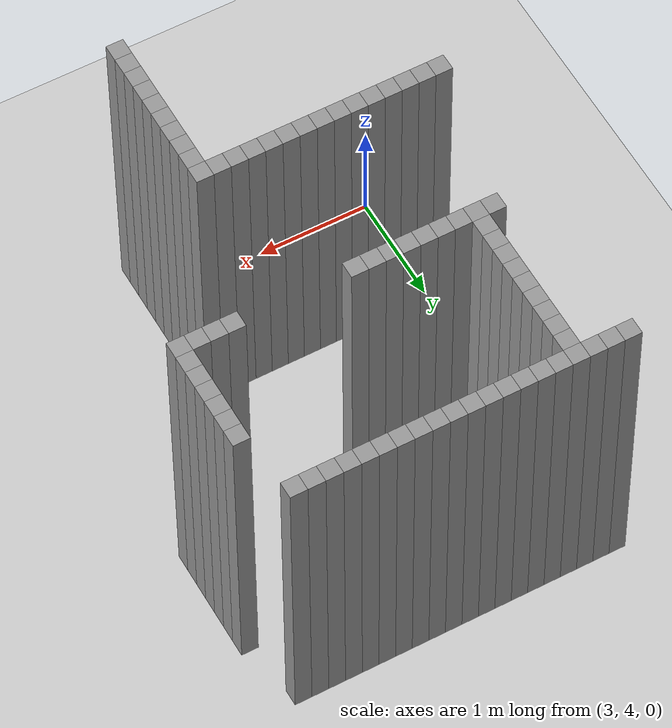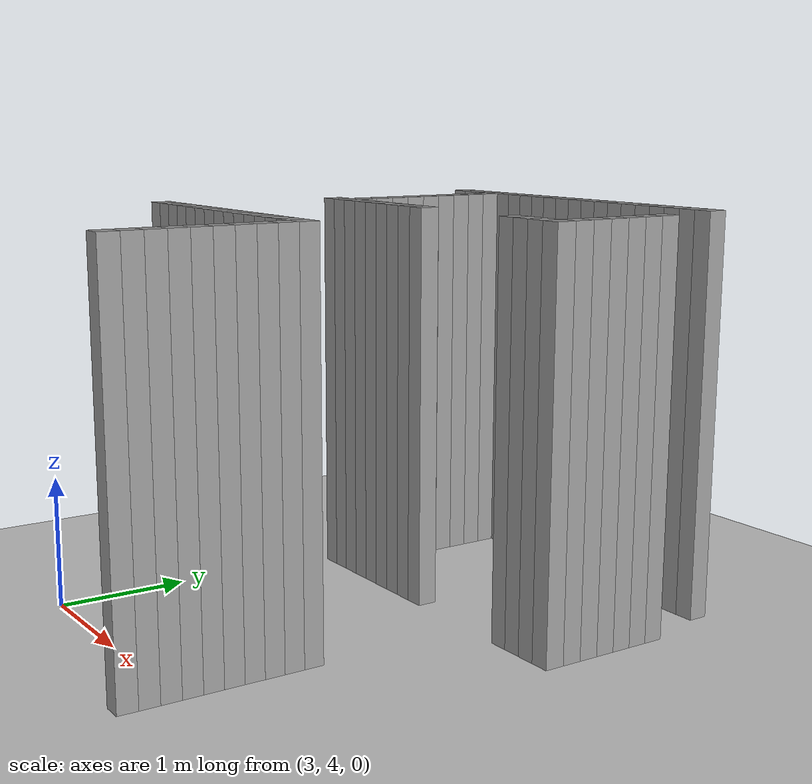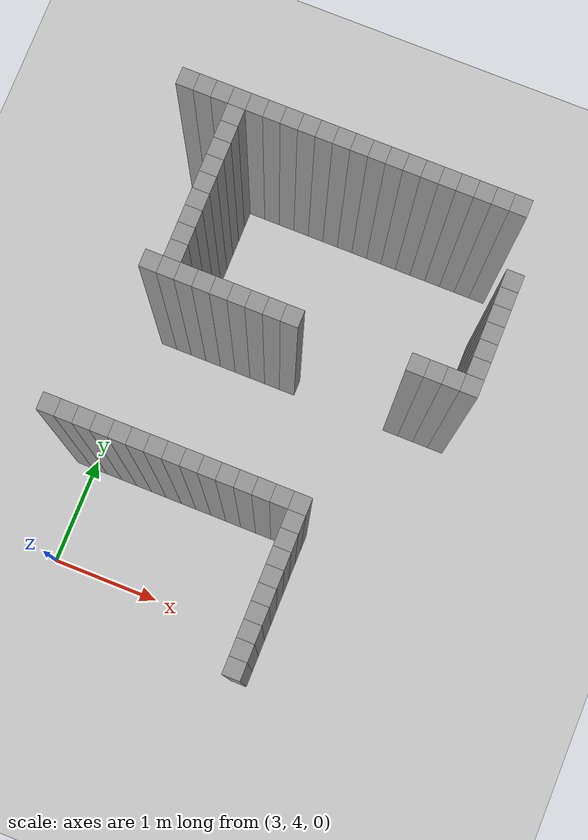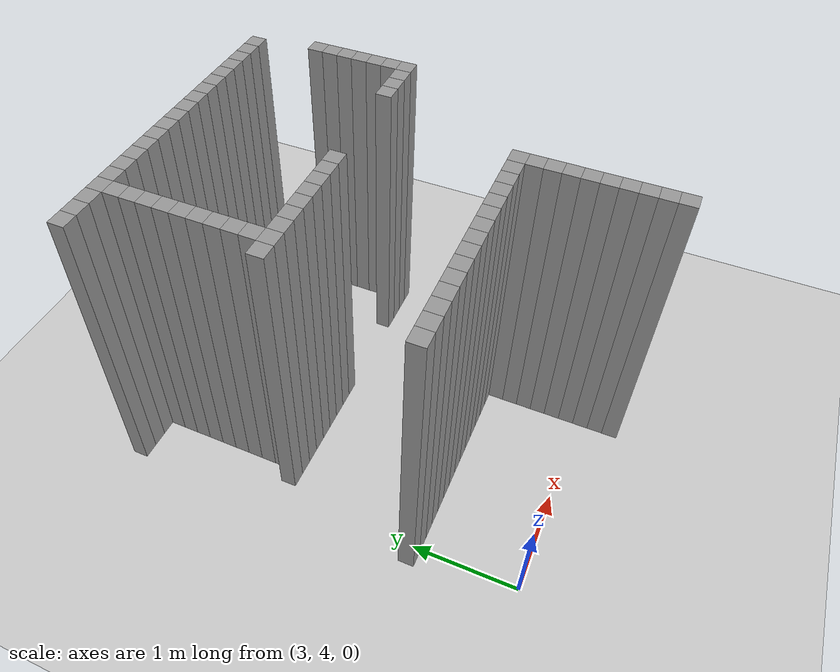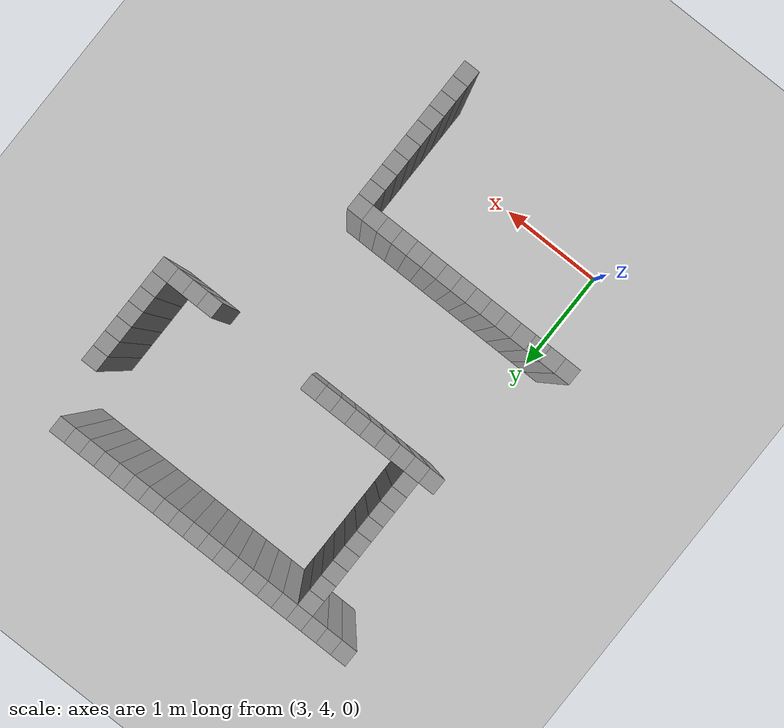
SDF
<sdf version="1.7">
 <world name="default">
  <model name="ground_plane">
   <static>1</static>
   <link name="link">
    <collision name="collision">
     <geometry><plane><normal>0 0 1</normal><size>100 100</size></plane></geometry>
     <surface>
      <contact><collide_bitmask>65535</collide_bitmask></contact>
      <friction><ode><mu>100</mu><mu2>50</mu2></ode></friction>
     </surface>
    </collision>
    <visual name="visual">
     <cast_shadows>0</cast_shadows>
     <geometry><plane><normal>0 0 1</normal><size>100 100</size></plane></geometry>
     <material>
      <script><uri>file://media/materials/scripts/gazebo.material</uri><name>Gazebo/Grey</name></script>
     </material>
    </visual>
   </link>
  </model>
  <model name="image45001">
   <pose>-1 -1 0 0 -0 0</pose>
   <link name="Wall_218">
    <collision name="Wall_218_Collision">
     <geometry><box><size>0.15 0.15 3</size></box></geometry>
     <pose>0 0 1.5 0 -0 0</pose>
    </collision>
    <visual name="Wall_218_Visual">
     <pose>0 0 1.5 0 -0 0</pose>
     <geometry><box><size>0.15 0.15 3</size></box></geometry>
     <material>
      <script><uri>file://media/materials/scripts/gazebo.material</uri><name>Gazebo/Grey</name></script>
      <ambient>1 1 1 1</ambient>
     </material>
     <meta><layer>0</layer></meta>
    </visual>
    <pose>3.9 6.0 0 0 -0 0</pose>
   </link>
   <link name="Wall_219">
    <collision name="Wall_219_Collision">
     <geometry><box><size>0.15 0.15 3</size></box></geometry>
     <pose>0 0 1.5 0 -0 0</pose>
    </collision>
    <visual name="Wall_219_Visual">
     <pose>0 0 1.5 0 -0 0</pose>
     <geometry><box><size>0.15 0.15 3</size></box></geometry>
     <material>
      <script><uri>file://media/materials/scripts/gazebo.material</uri><name>Gazebo/Grey</name></script>
      <ambient>1 1 1 1</ambient>
     </material>
     <meta><layer>0</layer></meta>
    </visual>
    <pose>3.9 8.85 0 0 -0 0</pose>
   </link>
   <link name="Wall_223">
    <collision name="Wall_223_Collision">
     <geometry><box><size>0.15 0.15 3</size></box></geometry>
     <pose>0 0 1.5 0 -0 0</pose>
    </collision>
    <visual name="Wall_223_Visual">
     <pose>0 0 1.5 0 -0 0</pose>
     <geometry><box><size>0.15 0.15 3</size></box></geometry>
     <material>
      <script><uri>file://media/materials/scripts/gazebo.material</uri><name>Gazebo/Grey</name></script>
      <ambient>1 1 1 1</ambient>
     </material>
     <meta><layer>0</layer></meta>
    </visual>
    <pose>4.05 6.0 0 0 -0 0</pose>
   </link>
   <link name="Wall_224">
    <collision name="Wall_224_Collision">
     <geometry><box><size>0.15 0.15 3</size></box></geometry>
     <pose>0 0 1.5 0 -0 0</pose>
    </collision>
    <visual name="Wall_224_Visual">
     <pose>0 0 1.5 0 -0 0</pose>
     <geometry><box><size>0.15 0.15 3</size></box></geometry>
     <material>
      <script><uri>file://media/materials/scripts/gazebo.material</uri><name>Gazebo/Grey</name></script>
      <ambient>1 1 1 1</ambient>
     </material>
     <meta><layer>0</layer></meta>
    </visual>
    <pose>4.05 8.85 0 0 -0 0</pose>
   </link>
   <link name="Wall_228">
    <collision name="Wall_228_Collision">
     <geometry><box><size>0.15 0.15 3</size></box></geometry>
     <pose>0 0 1.5 0 -0 0</pose>
    </collision>
    <visual name="Wall_228_Visual">
     <pose>0 0 1.5 0 -0 0</pose>
     <geometry><box><size>0.15 0.15 3</size></box></geometry>
     <material>
      <script><uri>file://media/materials/scripts/gazebo.material</uri><name>Gazebo/Grey</name></script>
      <ambient>1 1 1 1</ambient>
     </material>
     <meta><layer>0</layer></meta>
    </visual>
    <pose>4.2 6.0 0 0 -0 0</pose>
   </link>
   <link name="Wall_229">
    <collision name="Wall_229_Collision">
     <geometry><box><size>0.15 0.15 3</size></box></geometry>
     <pose>0 0 1.5 0 -0 0</pose>
    </collision>
    <visual name="Wall_229_Visual">
     <pose>0 0 1.5 0 -0 0</pose>
     <geometry><box><size>0.15 0.15 3</size></box></geometry>
     <material>
      <script><uri>file://media/materials/scripts/gazebo.material</uri><name>Gazebo/Grey</name></script>
      <ambient>1 1 1 1</ambient>
     </material>
     <meta><layer>0</layer></meta>
    </visual>
    <pose>4.2 7.35 0 0 -0 0</pose>
   </link>
   <link name="Wall_230">
    <collision name="Wall_230_Collision">
     <geometry><box><size>0.15 0.15 3</size></box></geometry>
     <pose>0 0 1.5 0 -0 0</pose>
    </collision>
    <visual name="Wall_230_Visual">
     <pose>0 0 1.5 0 -0 0</pose>
     <geometry><box><size>0.15 0.15 3</size></box></geometry>
     <material>
      <script><uri>file://media/materials/scripts/gazebo.material</uri><name>Gazebo/Grey</name></script>
      <ambient>1 1 1 1</ambient>
     </material>
     <meta><layer>0</layer></meta>
    </visual>
    <pose>4.2 8.85 0 0 -0 0</pose>
   </link>
   <link name="Wall_234">
    <collision name="Wall_234_Collision">
     <geometry><box><size>0.15 0.15 3</size></box></geometry>
     <pose>0 0 1.5 0 -0 0</pose>
    </collision>
    <visual name="Wall_234_Visual">
     <pose>0 0 1.5 0 -0 0</pose>
     <geometry><box><size>0.15 0.15 3</size></box></geometry>
     <material>
      <script><uri>file://media/materials/scripts/gazebo.material</uri><name>Gazebo/Grey</name></script>
      <ambient>1 1 1 1</ambient>
     </material>
     <meta><layer>0</layer></meta>
    </visual>
    <pose>4.35 6.0 0 0 -0 0</pose>
   </link>
   <link name="Wall_235">
    <collision name="Wall_235_Collision">
     <geometry><box><size>0.15 0.15 3</size></box></geometry>
     <pose>0 0 1.5 0 -0 0</pose>
    </collision>
    <visual name="Wall_235_Visual">
     <pose>0 0 1.5 0 -0 0</pose>
     <geometry><box><size>0.15 0.15 3</size></box></geometry>
     <material>
      <script><uri>file://media/materials/scripts/gazebo.material</uri><name>Gazebo/Grey</name></script>
      <ambient>1 1 1 1</ambient>
     </material>
     <meta><layer>0</layer></meta>
    </visual>
    <pose>4.35 7.35 0 0 -0 0</pose>
   </link>
   <link name="Wall_236">
    <collision name="Wall_236_Collision">
     <geometry><box><size>0.15 0.15 3</size></box></geometry>
     <pose>0 0 1.5 0 -0 0</pose>
    </collision>
    <visual name="Wall_236_Visual">
     <pose>0 0 1.5 0 -0 0</pose>
     <geometry><box><size>0.15 0.15 3</size></box></geometry>
     <material>
      <script><uri>file://media/materials/scripts/gazebo.material</uri><name>Gazebo/Grey</name></script>
      <ambient>1 1 1 1</ambient>
     </material>
     <meta><layer>0</layer></meta>
    </visual>
    <pose>4.35 7.5 0 0 -0 0</pose>
   </link>
   <link name="Wall_237">
    <collision name="Wall_237_Collision">
     <geometry><box><size>0.15 0.15 3</size></box></geometry>
     <pose>0 0 1.5 0 -0 0</pose>
    </collision>
    <visual name="Wall_237_Visual">
     <pose>0 0 1.5 0 -0 0</pose>
     <geometry><box><size>0.15 0.15 3</size></box></geometry>
     <material>
      <script><uri>file://media/materials/scripts/gazebo.material</uri><name>Gazebo/Grey</name></script>
      <ambient>1 1 1 1</ambient>
     </material>
     <meta><layer>0</layer></meta>
    </visual>
    <pose>4.35 7.6499999999999995 0 0 -0 0</pose>
   </link>
   <link name="Wall_238">
    <collision name="Wall_238_Collision">
     <geometry><box><size>0.15 0.15 3</size></box></geometry>
     <pose>0 0 1.5 0 -0 0</pose>
    </collision>
    <visual name="Wall_238_Visual">
     <pose>0 0 1.5 0 -0 0</pose>
     <geometry><box><size>0.15 0.15 3</size></box></geometry>
     <material>
      <script><uri>file://media/materials/scripts/gazebo.material</uri><name>Gazebo/Grey</name></script>
      <ambient>1 1 1 1</ambient>
     </material>
     <meta><layer>0</layer></meta>
    </visual>
    <pose>4.35 7.8 0 0 -0 0</pose>
   </link>
   <link name="Wall_239">
    <collision name="Wall_239_Collision">
     <geometry><box><size>0.15 0.15 3</size></box></geometry>
     <pose>0 0 1.5 0 -0 0</pose>
    </collision>
    <visual name="Wall_239_Visual">
     <pose>0 0 1.5 0 -0 0</pose>
     <geometry><box><size>0.15 0.15 3</size></box></geometry>
     <material>
      <script><uri>file://media/materials/scripts/gazebo.material</uri><name>Gazebo/Grey</name></script>
      <ambient>1 1 1 1</ambient>
     </material>
     <meta><layer>0</layer></meta>
    </visual>
    <pose>4.35 7.949999999999999 0 0 -0 0</pose>
   </link>
   <link name="Wall_240">
    <collision name="Wall_240_Collision">
     <geometry><box><size>0.15 0.15 3</size></box></geometry>
     <pose>0 0 1.5 0 -0 0</pose>
    </collision>
    <visual name="Wall_240_Visual">
     <pose>0 0 1.5 0 -0 0</pose>
     <geometry><box><size>0.15 0.15 3</size></box></geometry>
     <material>
      <script><uri>file://media/materials/scripts/gazebo.material</uri><name>Gazebo/Grey</name></script>
      <ambient>1 1 1 1</ambient>
     </material>
     <meta><layer>0</layer></meta>
    </visual>
    <pose>4.35 8.1 0 0 -0 0</pose>
   </link>
   <link name="Wall_241">
    <collision name="Wall_241_Collision">
     <geometry><box><size>0.15 0.15 3</size></box></geometry>
     <pose>0 0 1.5 0 -0 0</pose>
    </collision>
    <visual name="Wall_241_Visual">
     <pose>0 0 1.5 0 -0 0</pose>
     <geometry><box><size>0.15 0.15 3</size></box></geometry>
     <material>
      <script><uri>file://media/materials/scripts/gazebo.material</uri><name>Gazebo/Grey</name></script>
      <ambient>1 1 1 1</ambient>
     </material>
     <meta><layer>0</layer></meta>
    </visual>
    <pose>4.35 8.25 0 0 -0 0</pose>
   </link>
   <link name="Wall_242">
    <collision name="Wall_242_Collision">
     <geometry><box><size>0.15 0.15 3</size></box></geometry>
     <pose>0 0 1.5 0 -0 0</pose>
    </collision>
    <visual name="Wall_242_Visual">
     <pose>0 0 1.5 0 -0 0</pose>
     <geometry><box><size>0.15 0.15 3</size></box></geometry>
     <material>
      <script><uri>file://media/materials/scripts/gazebo.material</uri><name>Gazebo/Grey</name></script>
      <ambient>1 1 1 1</ambient>
     </material>
     <meta><layer>0</layer></meta>
    </visual>
    <pose>4.35 8.4 0 0 -0 0</pose>
   </link>
   <link name="Wall_243">
    <collision name="Wall_243_Collision">
     <geometry><box><size>0.15 0.15 3</size></box></geometry>
     <pose>0 0 1.5 0 -0 0</pose>
    </collision>
    <visual name="Wall_243_Visual">
     <pose>0 0 1.5 0 -0 0</pose>
     <geometry><box><size>0.15 0.15 3</size></box></geometry>
     <material>
      <script><uri>file://media/materials/scripts/gazebo.material</uri><name>Gazebo/Grey</name></script>
      <ambient>1 1 1 1</ambient>
     </material>
     <meta><layer>0</layer></meta>
    </visual>
    <pose>4.35 8.549999999999999 0 0 -0 0</pose>
   </link>
   <link name="Wall_244">
    <collision name="Wall_244_Collision">
     <geometry><box><size>0.15 0.15 3</size></box></geometry>
     <pose>0 0 1.5 0 -0 0</pose>
    </collision>
    <visual name="Wall_244_Visual">
     <pose>0 0 1.5 0 -0 0</pose>
     <geometry><box><size>0.15 0.15 3</size></box></geometry>
     <material>
      <script><uri>file://media/materials/scripts/gazebo.material</uri><name>Gazebo/Grey</name></script>
      <ambient>1 1 1 1</ambient>
     </material>
     <meta><layer>0</layer></meta>
    </visual>
    <pose>4.35 8.7 0 0 -0 0</pose>
   </link>
   <link name="Wall_245">
    <collision name="Wall_245_Collision">
     <geometry><box><size>0.15 0.15 3</size></box></geometry>
     <pose>0 0 1.5 0 -0 0</pose>
    </collision>
    <visual name="Wall_245_Visual">
     <pose>0 0 1.5 0 -0 0</pose>
     <geometry><box><size>0.15 0.15 3</size></box></geometry>
     <material>
      <script><uri>file://media/materials/scripts/gazebo.material</uri><name>Gazebo/Grey</name></script>
      <ambient>1 1 1 1</ambient>
     </material>
     <meta><layer>0</layer></meta>
    </visual>
    <pose>4.35 8.85 0 0 -0 0</pose>
   </link>
   <link name="Wall_249">
    <collision name="Wall_249_Collision">
     <geometry><box><size>0.15 0.15 3</size></box></geometry>
     <pose>0 0 1.5 0 -0 0</pose>
    </collision>
    <visual name="Wall_249_Visual">
     <pose>0 0 1.5 0 -0 0</pose>
     <geometry><box><size>0.15 0.15 3</size></box></geometry>
     <material>
      <script><uri>file://media/materials/scripts/gazebo.material</uri><name>Gazebo/Grey</name></script>
      <ambient>1 1 1 1</ambient>
     </material>
     <meta><layer>0</layer></meta>
    </visual>
    <pose>4.5 6.0 0 0 -0 0</pose>
   </link>
   <link name="Wall_250">
    <collision name="Wall_250_Collision">
     <geometry><box><size>0.15 0.15 3</size></box></geometry>
     <pose>0 0 1.5 0 -0 0</pose>
    </collision>
    <visual name="Wall_250_Visual">
     <pose>0 0 1.5 0 -0 0</pose>
     <geometry><box><size>0.15 0.15 3</size></box></geometry>
     <material>
      <script><uri>file://media/materials/scripts/gazebo.material</uri><name>Gazebo/Grey</name></script>
      <ambient>1 1 1 1</ambient>
     </material>
     <meta><layer>0</layer></meta>
    </visual>
    <pose>4.5 7.35 0 0 -0 0</pose>
   </link>
   <link name="Wall_251">
    <collision name="Wall_251_Collision">
     <geometry><box><size>0.15 0.15 3</size></box></geometry>
     <pose>0 0 1.5 0 -0 0</pose>
    </collision>
    <visual name="Wall_251_Visual">
     <pose>0 0 1.5 0 -0 0</pose>
     <geometry><box><size>0.15 0.15 3</size></box></geometry>
     <material>
      <script><uri>file://media/materials/scripts/gazebo.material</uri><name>Gazebo/Grey</name></script>
      <ambient>1 1 1 1</ambient>
     </material>
     <meta><layer>0</layer></meta>
    </visual>
    <pose>4.5 8.85 0 0 -0 0</pose>
   </link>
   <link name="Wall_268">
    <collision name="Wall_268_Collision">
     <geometry><box><size>0.15 0.15 3</size></box></geometry>
     <pose>0 0 1.5 0 -0 0</pose>
    </collision>
    <visual name="Wall_268_Visual">
     <pose>0 0 1.5 0 -0 0</pose>
     <geometry><box><size>0.15 0.15 3</size></box></geometry>
     <material>
      <script><uri>file://media/materials/scripts/gazebo.material</uri><name>Gazebo/Grey</name></script>
      <ambient>1 1 1 1</ambient>
     </material>
     <meta><layer>0</layer></meta>
    </visual>
    <pose>4.6499999999999995 6.0 0 0 -0 0</pose>
   </link>
   <link name="Wall_269">
    <collision name="Wall_269_Collision">
     <geometry><box><size>0.15 0.15 3</size></box></geometry>
     <pose>0 0 1.5 0 -0 0</pose>
    </collision>
    <visual name="Wall_269_Visual">
     <pose>0 0 1.5 0 -0 0</pose>
     <geometry><box><size>0.15 0.15 3</size></box></geometry>
     <material>
      <script><uri>file://media/materials/scripts/gazebo.material</uri><name>Gazebo/Grey</name></script>
      <ambient>1 1 1 1</ambient>
     </material>
     <meta><layer>0</layer></meta>
    </visual>
    <pose>4.6499999999999995 7.35 0 0 -0 0</pose>
   </link>
   <link name="Wall_270">
    <collision name="Wall_270_Collision">
     <geometry><box><size>0.15 0.15 3</size></box></geometry>
     <pose>0 0 1.5 0 -0 0</pose>
    </collision>
    <visual name="Wall_270_Visual">
     <pose>0 0 1.5 0 -0 0</pose>
     <geometry><box><size>0.15 0.15 3</size></box></geometry>
     <material>
      <script><uri>file://media/materials/scripts/gazebo.material</uri><name>Gazebo/Grey</name></script>
      <ambient>1 1 1 1</ambient>
     </material>
     <meta><layer>0</layer></meta>
    </visual>
    <pose>4.6499999999999995 8.85 0 0 -0 0</pose>
   </link>
   <link name="Wall_272">
    <collision name="Wall_272_Collision">
     <geometry><box><size>0.15 0.15 3</size></box></geometry>
     <pose>0 0 1.5 0 -0 0</pose>
    </collision>
    <visual name="Wall_272_Visual">
     <pose>0 0 1.5 0 -0 0</pose>
     <geometry><box><size>0.15 0.15 3</size></box></geometry>
     <material>
      <script><uri>file://media/materials/scripts/gazebo.material</uri><name>Gazebo/Grey</name></script>
      <ambient>1 1 1 1</ambient>
     </material>
     <meta><layer>0</layer></meta>
    </visual>
    <pose>4.8 6.0 0 0 -0 0</pose>
   </link>
   <link name="Wall_273">
    <collision name="Wall_273_Collision">
     <geometry><box><size>0.15 0.15 3</size></box></geometry>
     <pose>0 0 1.5 0 -0 0</pose>
    </collision>
    <visual name="Wall_273_Visual">
     <pose>0 0 1.5 0 -0 0</pose>
     <geometry><box><size>0.15 0.15 3</size></box></geometry>
     <material>
      <script><uri>file://media/materials/scripts/gazebo.material</uri><name>Gazebo/Grey</name></script>
      <ambient>1 1 1 1</ambient>
     </material>
     <meta><layer>0</layer></meta>
    </visual>
    <pose>4.8 7.35 0 0 -0 0</pose>
   </link>
   <link name="Wall_274">
    <collision name="Wall_274_Collision">
     <geometry><box><size>0.15 0.15 3</size></box></geometry>
     <pose>0 0 1.5 0 -0 0</pose>
    </collision>
    <visual name="Wall_274_Visual">
     <pose>0 0 1.5 0 -0 0</pose>
     <geometry><box><size>0.15 0.15 3</size></box></geometry>
     <material>
      <script><uri>file://media/materials/scripts/gazebo.material</uri><name>Gazebo/Grey</name></script>
      <ambient>1 1 1 1</ambient>
     </material>
     <meta><layer>0</layer></meta>
    </visual>
    <pose>4.8 8.85 0 0 -0 0</pose>
   </link>
   <link name="Wall_276">
    <collision name="Wall_276_Collision">
     <geometry><box><size>0.15 0.15 3</size></box></geometry>
     <pose>0 0 1.5 0 -0 0</pose>
    </collision>
    <visual name="Wall_276_Visual">
     <pose>0 0 1.5 0 -0 0</pose>
     <geometry><box><size>0.15 0.15 3</size></box></geometry>
     <material>
      <script><uri>file://media/materials/scripts/gazebo.material</uri><name>Gazebo/Grey</name></script>
      <ambient>1 1 1 1</ambient>
     </material>
     <meta><layer>0</layer></meta>
    </visual>
    <pose>4.95 6.0 0 0 -0 0</pose>
   </link>
   <link name="Wall_277">
    <collision name="Wall_277_Collision">
     <geometry><box><size>0.15 0.15 3</size></box></geometry>
     <pose>0 0 1.5 0 -0 0</pose>
    </collision>
    <visual name="Wall_277_Visual">
     <pose>0 0 1.5 0 -0 0</pose>
     <geometry><box><size>0.15 0.15 3</size></box></geometry>
     <material>
      <script><uri>file://media/materials/scripts/gazebo.material</uri><name>Gazebo/Grey</name></script>
      <ambient>1 1 1 1</ambient>
     </material>
     <meta><layer>0</layer></meta>
    </visual>
    <pose>4.95 7.35 0 0 -0 0</pose>
   </link>
   <link name="Wall_278">
    <collision name="Wall_278_Collision">
     <geometry><box><size>0.15 0.15 3</size></box></geometry>
     <pose>0 0 1.5 0 -0 0</pose>
    </collision>
    <visual name="Wall_278_Visual">
     <pose>0 0 1.5 0 -0 0</pose>
     <geometry><box><size>0.15 0.15 3</size></box></geometry>
     <material>
      <script><uri>file://media/materials/scripts/gazebo.material</uri><name>Gazebo/Grey</name></script>
      <ambient>1 1 1 1</ambient>
     </material>
     <meta><layer>0</layer></meta>
    </visual>
    <pose>4.95 8.85 0 0 -0 0</pose>
   </link>
   <link name="Wall_280">
    <collision name="Wall_280_Collision">
     <geometry><box><size>0.15 0.15 3</size></box></geometry>
     <pose>0 0 1.5 0 -0 0</pose>
    </collision>
    <visual name="Wall_280_Visual">
     <pose>0 0 1.5 0 -0 0</pose>
     <geometry><box><size>0.15 0.15 3</size></box></geometry>
     <material>
      <script><uri>file://media/materials/scripts/gazebo.material</uri><name>Gazebo/Grey</name></script>
      <ambient>1 1 1 1</ambient>
     </material>
     <meta><layer>0</layer></meta>
    </visual>
    <pose>5.1 6.0 0 0 -0 0</pose>
   </link>
   <link name="Wall_281">
    <collision name="Wall_281_Collision">
     <geometry><box><size>0.15 0.15 3</size></box></geometry>
     <pose>0 0 1.5 0 -0 0</pose>
    </collision>
    <visual name="Wall_281_Visual">
     <pose>0 0 1.5 0 -0 0</pose>
     <geometry><box><size>0.15 0.15 3</size></box></geometry>
     <material>
      <script><uri>file://media/materials/scripts/gazebo.material</uri><name>Gazebo/Grey</name></script>
      <ambient>1 1 1 1</ambient>
     </material>
     <meta><layer>0</layer></meta>
    </visual>
    <pose>5.1 7.35 0 0 -0 0</pose>
   </link>
   <link name="Wall_282">
    <collision name="Wall_282_Collision">
     <geometry><box><size>0.15 0.15 3</size></box></geometry>
     <pose>0 0 1.5 0 -0 0</pose>
    </collision>
    <visual name="Wall_282_Visual">
     <pose>0 0 1.5 0 -0 0</pose>
     <geometry><box><size>0.15 0.15 3</size></box></geometry>
     <material>
      <script><uri>file://media/materials/scripts/gazebo.material</uri><name>Gazebo/Grey</name></script>
      <ambient>1 1 1 1</ambient>
     </material>
     <meta><layer>0</layer></meta>
    </visual>
    <pose>5.1 8.85 0 0 -0 0</pose>
   </link>
   <link name="Wall_284">
    <collision name="Wall_284_Collision">
     <geometry><box><size>0.15 0.15 3</size></box></geometry>
     <pose>0 0 1.5 0 -0 0</pose>
    </collision>
    <visual name="Wall_284_Visual">
     <pose>0 0 1.5 0 -0 0</pose>
     <geometry><box><size>0.15 0.15 3</size></box></geometry>
     <material>
      <script><uri>file://media/materials/scripts/gazebo.material</uri><name>Gazebo/Grey</name></script>
      <ambient>1 1 1 1</ambient>
     </material>
     <meta><layer>0</layer></meta>
    </visual>
    <pose>5.25 6.0 0 0 -0 0</pose>
   </link>
   <link name="Wall_285">
    <collision name="Wall_285_Collision">
     <geometry><box><size>0.15 0.15 3</size></box></geometry>
     <pose>0 0 1.5 0 -0 0</pose>
    </collision>
    <visual name="Wall_285_Visual">
     <pose>0 0 1.5 0 -0 0</pose>
     <geometry><box><size>0.15 0.15 3</size></box></geometry>
     <material>
      <script><uri>file://media/materials/scripts/gazebo.material</uri><name>Gazebo/Grey</name></script>
      <ambient>1 1 1 1</ambient>
     </material>
     <meta><layer>0</layer></meta>
    </visual>
    <pose>5.25 7.35 0 0 -0 0</pose>
   </link>
   <link name="Wall_286">
    <collision name="Wall_286_Collision">
     <geometry><box><size>0.15 0.15 3</size></box></geometry>
     <pose>0 0 1.5 0 -0 0</pose>
    </collision>
    <visual name="Wall_286_Visual">
     <pose>0 0 1.5 0 -0 0</pose>
     <geometry><box><size>0.15 0.15 3</size></box></geometry>
     <material>
      <script><uri>file://media/materials/scripts/gazebo.material</uri><name>Gazebo/Grey</name></script>
      <ambient>1 1 1 1</ambient>
     </material>
     <meta><layer>0</layer></meta>
    </visual>
    <pose>5.25 8.85 0 0 -0 0</pose>
   </link>
   <link name="Wall_288">
    <collision name="Wall_288_Collision">
     <geometry><box><size>0.15 0.15 3</size></box></geometry>
     <pose>0 0 1.5 0 -0 0</pose>
    </collision>
    <visual name="Wall_288_Visual">
     <pose>0 0 1.5 0 -0 0</pose>
     <geometry><box><size>0.15 0.15 3</size></box></geometry>
     <material>
      <script><uri>file://media/materials/scripts/gazebo.material</uri><name>Gazebo/Grey</name></script>
      <ambient>1 1 1 1</ambient>
     </material>
     <meta><layer>0</layer></meta>
    </visual>
    <pose>5.3999999999999995 6.0 0 0 -0 0</pose>
   </link>
   <link name="Wall_289">
    <collision name="Wall_289_Collision">
     <geometry><box><size>0.15 0.15 3</size></box></geometry>
     <pose>0 0 1.5 0 -0 0</pose>
    </collision>
    <visual name="Wall_289_Visual">
     <pose>0 0 1.5 0 -0 0</pose>
     <geometry><box><size>0.15 0.15 3</size></box></geometry>
     <material>
      <script><uri>file://media/materials/scripts/gazebo.material</uri><name>Gazebo/Grey</name></script>
      <ambient>1 1 1 1</ambient>
     </material>
     <meta><layer>0</layer></meta>
    </visual>
    <pose>5.3999999999999995 7.35 0 0 -0 0</pose>
   </link>
   <link name="Wall_290">
    <collision name="Wall_290_Collision">
     <geometry><box><size>0.15 0.15 3</size></box></geometry>
     <pose>0 0 1.5 0 -0 0</pose>
    </collision>
    <visual name="Wall_290_Visual">
     <pose>0 0 1.5 0 -0 0</pose>
     <geometry><box><size>0.15 0.15 3</size></box></geometry>
     <material>
      <script><uri>file://media/materials/scripts/gazebo.material</uri><name>Gazebo/Grey</name></script>
      <ambient>1 1 1 1</ambient>
     </material>
     <meta><layer>0</layer></meta>
    </visual>
    <pose>5.3999999999999995 8.85 0 0 -0 0</pose>
   </link>
   <link name="Wall_292">
    <collision name="Wall_292_Collision">
     <geometry><box><size>0.15 0.15 3</size></box></geometry>
     <pose>0 0 1.5 0 -0 0</pose>
    </collision>
    <visual name="Wall_292_Visual">
     <pose>0 0 1.5 0 -0 0</pose>
     <geometry><box><size>0.15 0.15 3</size></box></geometry>
     <material>
      <script><uri>file://media/materials/scripts/gazebo.material</uri><name>Gazebo/Grey</name></script>
      <ambient>1 1 1 1</ambient>
     </material>
     <meta><layer>0</layer></meta>
    </visual>
    <pose>5.55 6.0 0 0 -0 0</pose>
   </link>
   <link name="Wall_293">
    <collision name="Wall_293_Collision">
     <geometry><box><size>0.15 0.15 3</size></box></geometry>
     <pose>0 0 1.5 0 -0 0</pose>
    </collision>
    <visual name="Wall_293_Visual">
     <pose>0 0 1.5 0 -0 0</pose>
     <geometry><box><size>0.15 0.15 3</size></box></geometry>
     <material>
      <script><uri>file://media/materials/scripts/gazebo.material</uri><name>Gazebo/Grey</name></script>
      <ambient>1 1 1 1</ambient>
     </material>
     <meta><layer>0</layer></meta>
    </visual>
    <pose>5.55 8.85 0 0 -0 0</pose>
   </link>
   <link name="Wall_296">
    <collision name="Wall_296_Collision">
     <geometry><box><size>0.15 0.15 3</size></box></geometry>
     <pose>0 0 1.5 0 -0 0</pose>
    </collision>
    <visual name="Wall_296_Visual">
     <pose>0 0 1.5 0 -0 0</pose>
     <geometry><box><size>0.15 0.15 3</size></box></geometry>
     <material>
      <script><uri>file://media/materials/scripts/gazebo.material</uri><name>Gazebo/Grey</name></script>
      <ambient>1 1 1 1</ambient>
     </material>
     <meta><layer>0</layer></meta>
    </visual>
    <pose>5.7 6.0 0 0 -0 0</pose>
   </link>
   <link name="Wall_297">
    <collision name="Wall_297_Collision">
     <geometry><box><size>0.15 0.15 3</size></box></geometry>
     <pose>0 0 1.5 0 -0 0</pose>
    </collision>
    <visual name="Wall_297_Visual">
     <pose>0 0 1.5 0 -0 0</pose>
     <geometry><box><size>0.15 0.15 3</size></box></geometry>
     <material>
      <script><uri>file://media/materials/scripts/gazebo.material</uri><name>Gazebo/Grey</name></script>
      <ambient>1 1 1 1</ambient>
     </material>
     <meta><layer>0</layer></meta>
    </visual>
    <pose>5.7 8.85 0 0 -0 0</pose>
   </link>
   <link name="Wall_301">
    <collision name="Wall_301_Collision">
     <geometry><box><size>0.15 0.15 3</size></box></geometry>
     <pose>0 0 1.5 0 -0 0</pose>
    </collision>
    <visual name="Wall_301_Visual">
     <pose>0 0 1.5 0 -0 0</pose>
     <geometry><box><size>0.15 0.15 3</size></box></geometry>
     <material>
      <script><uri>file://media/materials/scripts/gazebo.material</uri><name>Gazebo/Grey</name></script>
      <ambient>1 1 1 1</ambient>
     </material>
     <meta><layer>0</layer></meta>
    </visual>
    <pose>5.85 6.0 0 0 -0 0</pose>
   </link>
   <link name="Wall_302">
    <collision name="Wall_302_Collision">
     <geometry><box><size>0.15 0.15 3</size></box></geometry>
     <pose>0 0 1.5 0 -0 0</pose>
    </collision>
    <visual name="Wall_302_Visual">
     <pose>0 0 1.5 0 -0 0</pose>
     <geometry><box><size>0.15 0.15 3</size></box></geometry>
     <material>
      <script><uri>file://media/materials/scripts/gazebo.material</uri><name>Gazebo/Grey</name></script>
      <ambient>1 1 1 1</ambient>
     </material>
     <meta><layer>0</layer></meta>
    </visual>
    <pose>5.85 8.85 0 0 -0 0</pose>
   </link>
   <link name="Wall_325">
    <collision name="Wall_325_Collision">
     <geometry><box><size>0.15 0.15 3</size></box></geometry>
     <pose>0 0 1.5 0 -0 0</pose>
    </collision>
    <visual name="Wall_325_Visual">
     <pose>0 0 1.5 0 -0 0</pose>
     <geometry><box><size>0.15 0.15 3</size></box></geometry>
     <material>
      <script><uri>file://media/materials/scripts/gazebo.material</uri><name>Gazebo/Grey</name></script>
      <ambient>1 1 1 1</ambient>
     </material>
     <meta><layer>0</layer></meta>
    </visual>
    <pose>6.0 4.6499999999999995 0 0 -0 0</pose>
   </link>
   <link name="Wall_326">
    <collision name="Wall_326_Collision">
     <geometry><box><size>0.15 0.15 3</size></box></geometry>
     <pose>0 0 1.5 0 -0 0</pose>
    </collision>
    <visual name="Wall_326_Visual">
     <pose>0 0 1.5 0 -0 0</pose>
     <geometry><box><size>0.15 0.15 3</size></box></geometry>
     <material>
      <script><uri>file://media/materials/scripts/gazebo.material</uri><name>Gazebo/Grey</name></script>
      <ambient>1 1 1 1</ambient>
     </material>
     <meta><layer>0</layer></meta>
    </visual>
    <pose>6.0 4.8 0 0 -0 0</pose>
   </link>
   <link name="Wall_327">
    <collision name="Wall_327_Collision">
     <geometry><box><size>0.15 0.15 3</size></box></geometry>
     <pose>0 0 1.5 0 -0 0</pose>
    </collision>
    <visual name="Wall_327_Visual">
     <pose>0 0 1.5 0 -0 0</pose>
     <geometry><box><size>0.15 0.15 3</size></box></geometry>
     <material>
      <script><uri>file://media/materials/scripts/gazebo.material</uri><name>Gazebo/Grey</name></script>
      <ambient>1 1 1 1</ambient>
     </material>
     <meta><layer>0</layer></meta>
    </visual>
    <pose>6.0 4.95 0 0 -0 0</pose>
   </link>
   <link name="Wall_328">
    <collision name="Wall_328_Collision">
     <geometry><box><size>0.15 0.15 3</size></box></geometry>
     <pose>0 0 1.5 0 -0 0</pose>
    </collision>
    <visual name="Wall_328_Visual">
     <pose>0 0 1.5 0 -0 0</pose>
     <geometry><box><size>0.15 0.15 3</size></box></geometry>
     <material>
      <script><uri>file://media/materials/scripts/gazebo.material</uri><name>Gazebo/Grey</name></script>
      <ambient>1 1 1 1</ambient>
     </material>
     <meta><layer>0</layer></meta>
    </visual>
    <pose>6.0 5.1 0 0 -0 0</pose>
   </link>
   <link name="Wall_329">
    <collision name="Wall_329_Collision">
     <geometry><box><size>0.15 0.15 3</size></box></geometry>
     <pose>0 0 1.5 0 -0 0</pose>
    </collision>
    <visual name="Wall_329_Visual">
     <pose>0 0 1.5 0 -0 0</pose>
     <geometry><box><size>0.15 0.15 3</size></box></geometry>
     <material>
      <script><uri>file://media/materials/scripts/gazebo.material</uri><name>Gazebo/Grey</name></script>
      <ambient>1 1 1 1</ambient>
     </material>
     <meta><layer>0</layer></meta>
    </visual>
    <pose>6.0 5.25 0 0 -0 0</pose>
   </link>
   <link name="Wall_330">
    <collision name="Wall_330_Collision">
     <geometry><box><size>0.15 0.15 3</size></box></geometry>
     <pose>0 0 1.5 0 -0 0</pose>
    </collision>
    <visual name="Wall_330_Visual">
     <pose>0 0 1.5 0 -0 0</pose>
     <geometry><box><size>0.15 0.15 3</size></box></geometry>
     <material>
      <script><uri>file://media/materials/scripts/gazebo.material</uri><name>Gazebo/Grey</name></script>
      <ambient>1 1 1 1</ambient>
     </material>
     <meta><layer>0</layer></meta>
    </visual>
    <pose>6.0 5.3999999999999995 0 0 -0 0</pose>
   </link>
   <link name="Wall_331">
    <collision name="Wall_331_Collision">
     <geometry><box><size>0.15 0.15 3</size></box></geometry>
     <pose>0 0 1.5 0 -0 0</pose>
    </collision>
    <visual name="Wall_331_Visual">
     <pose>0 0 1.5 0 -0 0</pose>
     <geometry><box><size>0.15 0.15 3</size></box></geometry>
     <material>
      <script><uri>file://media/materials/scripts/gazebo.material</uri><name>Gazebo/Grey</name></script>
      <ambient>1 1 1 1</ambient>
     </material>
     <meta><layer>0</layer></meta>
    </visual>
    <pose>6.0 5.55 0 0 -0 0</pose>
   </link>
   <link name="Wall_332">
    <collision name="Wall_332_Collision">
     <geometry><box><size>0.15 0.15 3</size></box></geometry>
     <pose>0 0 1.5 0 -0 0</pose>
    </collision>
    <visual name="Wall_332_Visual">
     <pose>0 0 1.5 0 -0 0</pose>
     <geometry><box><size>0.15 0.15 3</size></box></geometry>
     <material>
      <script><uri>file://media/materials/scripts/gazebo.material</uri><name>Gazebo/Grey</name></script>
      <ambient>1 1 1 1</ambient>
     </material>
     <meta><layer>0</layer></meta>
    </visual>
    <pose>6.0 5.7 0 0 -0 0</pose>
   </link>
   <link name="Wall_333">
    <collision name="Wall_333_Collision">
     <geometry><box><size>0.15 0.15 3</size></box></geometry>
     <pose>0 0 1.5 0 -0 0</pose>
    </collision>
    <visual name="Wall_333_Visual">
     <pose>0 0 1.5 0 -0 0</pose>
     <geometry><box><size>0.15 0.15 3</size></box></geometry>
     <material>
      <script><uri>file://media/materials/scripts/gazebo.material</uri><name>Gazebo/Grey</name></script>
      <ambient>1 1 1 1</ambient>
     </material>
     <meta><layer>0</layer></meta>
    </visual>
    <pose>6.0 5.85 0 0 -0 0</pose>
   </link>
   <link name="Wall_334">
    <collision name="Wall_334_Collision">
     <geometry><box><size>0.15 0.15 3</size></box></geometry>
     <pose>0 0 1.5 0 -0 0</pose>
    </collision>
    <visual name="Wall_334_Visual">
     <pose>0 0 1.5 0 -0 0</pose>
     <geometry><box><size>0.15 0.15 3</size></box></geometry>
     <material>
      <script><uri>file://media/materials/scripts/gazebo.material</uri><name>Gazebo/Grey</name></script>
      <ambient>1 1 1 1</ambient>
     </material>
     <meta><layer>0</layer></meta>
    </visual>
    <pose>6.0 6.0 0 0 -0 0</pose>
   </link>
   <link name="Wall_335">
    <collision name="Wall_335_Collision">
     <geometry><box><size>0.15 0.15 3</size></box></geometry>
     <pose>0 0 1.5 0 -0 0</pose>
    </collision>
    <visual name="Wall_335_Visual">
     <pose>0 0 1.5 0 -0 0</pose>
     <geometry><box><size>0.15 0.15 3</size></box></geometry>
     <material>
      <script><uri>file://media/materials/scripts/gazebo.material</uri><name>Gazebo/Grey</name></script>
      <ambient>1 1 1 1</ambient>
     </material>
     <meta><layer>0</layer></meta>
    </visual>
    <pose>6.0 8.85 0 0 -0 0</pose>
   </link>
   <link name="Wall_338">
    <collision name="Wall_338_Collision">
     <geometry><box><size>0.15 0.15 3</size></box></geometry>
     <pose>0 0 1.5 0 -0 0</pose>
    </collision>
    <visual name="Wall_338_Visual">
     <pose>0 0 1.5 0 -0 0</pose>
     <geometry><box><size>0.15 0.15 3</size></box></geometry>
     <material>
      <script><uri>file://media/materials/scripts/gazebo.material</uri><name>Gazebo/Grey</name></script>
      <ambient>1 1 1 1</ambient>
     </material>
     <meta><layer>0</layer></meta>
    </visual>
    <pose>6.1499999999999995 8.85 0 0 -0 0</pose>
   </link>
   <link name="Wall_341">
    <collision name="Wall_341_Collision">
     <geometry><box><size>0.15 0.15 3</size></box></geometry>
     <pose>0 0 1.5 0 -0 0</pose>
    </collision>
    <visual name="Wall_341_Visual">
     <pose>0 0 1.5 0 -0 0</pose>
     <geometry><box><size>0.15 0.15 3</size></box></geometry>
     <material>
      <script><uri>file://media/materials/scripts/gazebo.material</uri><name>Gazebo/Grey</name></script>
      <ambient>1 1 1 1</ambient>
     </material>
     <meta><layer>0</layer></meta>
    </visual>
    <pose>6.3 8.85 0 0 -0 0</pose>
   </link>
   <link name="Wall_344">
    <collision name="Wall_344_Collision">
     <geometry><box><size>0.15 0.15 3</size></box></geometry>
     <pose>0 0 1.5 0 -0 0</pose>
    </collision>
    <visual name="Wall_344_Visual">
     <pose>0 0 1.5 0 -0 0</pose>
     <geometry><box><size>0.15 0.15 3</size></box></geometry>
     <material>
      <script><uri>file://media/materials/scripts/gazebo.material</uri><name>Gazebo/Grey</name></script>
      <ambient>1 1 1 1</ambient>
     </material>
     <meta><layer>0</layer></meta>
    </visual>
    <pose>6.45 7.35 0 0 -0 0</pose>
   </link>
   <link name="Wall_345">
    <collision name="Wall_345_Collision">
     <geometry><box><size>0.15 0.15 3</size></box></geometry>
     <pose>0 0 1.5 0 -0 0</pose>
    </collision>
    <visual name="Wall_345_Visual">
     <pose>0 0 1.5 0 -0 0</pose>
     <geometry><box><size>0.15 0.15 3</size></box></geometry>
     <material>
      <script><uri>file://media/materials/scripts/gazebo.material</uri><name>Gazebo/Grey</name></script>
      <ambient>1 1 1 1</ambient>
     </material>
     <meta><layer>0</layer></meta>
    </visual>
    <pose>6.45 8.85 0 0 -0 0</pose>
   </link>
   <link name="Wall_348">
    <collision name="Wall_348_Collision">
     <geometry><box><size>0.15 0.15 3</size></box></geometry>
     <pose>0 0 1.5 0 -0 0</pose>
    </collision>
    <visual name="Wall_348_Visual">
     <pose>0 0 1.5 0 -0 0</pose>
     <geometry><box><size>0.15 0.15 3</size></box></geometry>
     <material>
      <script><uri>file://media/materials/scripts/gazebo.material</uri><name>Gazebo/Grey</name></script>
      <ambient>1 1 1 1</ambient>
     </material>
     <meta><layer>0</layer></meta>
    </visual>
    <pose>6.6 7.35 0 0 -0 0</pose>
   </link>
   <link name="Wall_349">
    <collision name="Wall_349_Collision">
     <geometry><box><size>0.15 0.15 3</size></box></geometry>
     <pose>0 0 1.5 0 -0 0</pose>
    </collision>
    <visual name="Wall_349_Visual">
     <pose>0 0 1.5 0 -0 0</pose>
     <geometry><box><size>0.15 0.15 3</size></box></geometry>
     <material>
      <script><uri>file://media/materials/scripts/gazebo.material</uri><name>Gazebo/Grey</name></script>
      <ambient>1 1 1 1</ambient>
     </material>
     <meta><layer>0</layer></meta>
    </visual>
    <pose>6.6 8.85 0 0 -0 0</pose>
   </link>
   <link name="Wall_351">
    <collision name="Wall_351_Collision">
     <geometry><box><size>0.15 0.15 3</size></box></geometry>
     <pose>0 0 1.5 0 -0 0</pose>
    </collision>
    <visual name="Wall_351_Visual">
     <pose>0 0 1.5 0 -0 0</pose>
     <geometry><box><size>0.15 0.15 3</size></box></geometry>
     <material>
      <script><uri>file://media/materials/scripts/gazebo.material</uri><name>Gazebo/Grey</name></script>
      <ambient>1 1 1 1</ambient>
     </material>
     <meta><layer>0</layer></meta>
    </visual>
    <pose>6.75 7.35 0 0 -0 0</pose>
   </link>
   <link name="Wall_352">
    <collision name="Wall_352_Collision">
     <geometry><box><size>0.15 0.15 3</size></box></geometry>
     <pose>0 0 1.5 0 -0 0</pose>
    </collision>
    <visual name="Wall_352_Visual">
     <pose>0 0 1.5 0 -0 0</pose>
     <geometry><box><size>0.15 0.15 3</size></box></geometry>
     <material>
      <script><uri>file://media/materials/scripts/gazebo.material</uri><name>Gazebo/Grey</name></script>
      <ambient>1 1 1 1</ambient>
     </material>
     <meta><layer>0</layer></meta>
    </visual>
    <pose>6.75 8.85 0 0 -0 0</pose>
   </link>
   <link name="Wall_354">
    <collision name="Wall_354_Collision">
     <geometry><box><size>0.15 0.15 3</size></box></geometry>
     <pose>0 0 1.5 0 -0 0</pose>
    </collision>
    <visual name="Wall_354_Visual">
     <pose>0 0 1.5 0 -0 0</pose>
     <geometry><box><size>0.15 0.15 3</size></box></geometry>
     <material>
      <script><uri>file://media/materials/scripts/gazebo.material</uri><name>Gazebo/Grey</name></script>
      <ambient>1 1 1 1</ambient>
     </material>
     <meta><layer>0</layer></meta>
    </visual>
    <pose>6.8999999999999995 7.35 0 0 -0 0</pose>
   </link>
   <link name="Wall_355">
    <collision name="Wall_355_Collision">
     <geometry><box><size>0.15 0.15 3</size></box></geometry>
     <pose>0 0 1.5 0 -0 0</pose>
    </collision>
    <visual name="Wall_355_Visual">
     <pose>0 0 1.5 0 -0 0</pose>
     <geometry><box><size>0.15 0.15 3</size></box></geometry>
     <material>
      <script><uri>file://media/materials/scripts/gazebo.material</uri><name>Gazebo/Grey</name></script>
      <ambient>1 1 1 1</ambient>
     </material>
     <meta><layer>0</layer></meta>
    </visual>
    <pose>6.8999999999999995 7.5 0 0 -0 0</pose>
   </link>
   <link name="Wall_356">
    <collision name="Wall_356_Collision">
     <geometry><box><size>0.15 0.15 3</size></box></geometry>
     <pose>0 0 1.5 0 -0 0</pose>
    </collision>
    <visual name="Wall_356_Visual">
     <pose>0 0 1.5 0 -0 0</pose>
     <geometry><box><size>0.15 0.15 3</size></box></geometry>
     <material>
      <script><uri>file://media/materials/scripts/gazebo.material</uri><name>Gazebo/Grey</name></script>
      <ambient>1 1 1 1</ambient>
     </material>
     <meta><layer>0</layer></meta>
    </visual>
    <pose>6.8999999999999995 7.6499999999999995 0 0 -0 0</pose>
   </link>
   <link name="Wall_357">
    <collision name="Wall_357_Collision">
     <geometry><box><size>0.15 0.15 3</size></box></geometry>
     <pose>0 0 1.5 0 -0 0</pose>
    </collision>
    <visual name="Wall_357_Visual">
     <pose>0 0 1.5 0 -0 0</pose>
     <geometry><box><size>0.15 0.15 3</size></box></geometry>
     <material>
      <script><uri>file://media/materials/scripts/gazebo.material</uri><name>Gazebo/Grey</name></script>
      <ambient>1 1 1 1</ambient>
     </material>
     <meta><layer>0</layer></meta>
    </visual>
    <pose>6.8999999999999995 7.8 0 0 -0 0</pose>
   </link>
   <link name="Wall_358">
    <collision name="Wall_358_Collision">
     <geometry><box><size>0.15 0.15 3</size></box></geometry>
     <pose>0 0 1.5 0 -0 0</pose>
    </collision>
    <visual name="Wall_358_Visual">
     <pose>0 0 1.5 0 -0 0</pose>
     <geometry><box><size>0.15 0.15 3</size></box></geometry>
     <material>
      <script><uri>file://media/materials/scripts/gazebo.material</uri><name>Gazebo/Grey</name></script>
      <ambient>1 1 1 1</ambient>
     </material>
     <meta><layer>0</layer></meta>
    </visual>
    <pose>6.8999999999999995 7.949999999999999 0 0 -0 0</pose>
   </link>
   <link name="Wall_359">
    <collision name="Wall_359_Collision">
     <geometry><box><size>0.15 0.15 3</size></box></geometry>
     <pose>0 0 1.5 0 -0 0</pose>
    </collision>
    <visual name="Wall_359_Visual">
     <pose>0 0 1.5 0 -0 0</pose>
     <geometry><box><size>0.15 0.15 3</size></box></geometry>
     <material>
      <script><uri>file://media/materials/scripts/gazebo.material</uri><name>Gazebo/Grey</name></script>
      <ambient>1 1 1 1</ambient>
     </material>
     <meta><layer>0</layer></meta>
    </visual>
    <pose>6.8999999999999995 8.1 0 0 -0 0</pose>
   </link>
   <link name="Wall_360">
    <collision name="Wall_360_Collision">
     <geometry><box><size>0.15 0.15 3</size></box></geometry>
     <pose>0 0 1.5 0 -0 0</pose>
    </collision>
    <visual name="Wall_360_Visual">
     <pose>0 0 1.5 0 -0 0</pose>
     <geometry><box><size>0.15 0.15 3</size></box></geometry>
     <material>
      <script><uri>file://media/materials/scripts/gazebo.material</uri><name>Gazebo/Grey</name></script>
      <ambient>1 1 1 1</ambient>
     </material>
     <meta><layer>0</layer></meta>
    </visual>
    <pose>6.8999999999999995 8.25 0 0 -0 0</pose>
   </link>
   <static>1</static>
  </model>
 </world>
</sdf>
